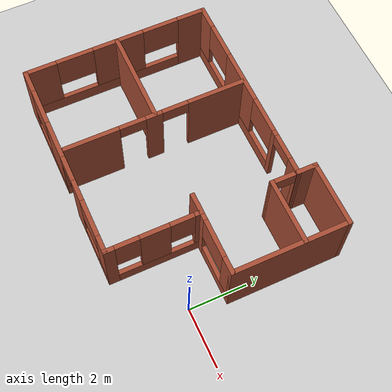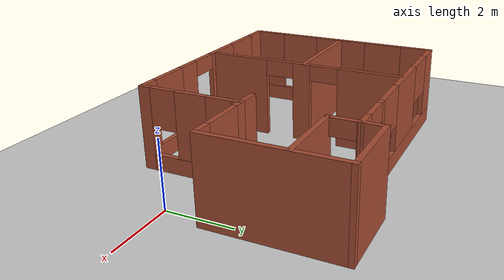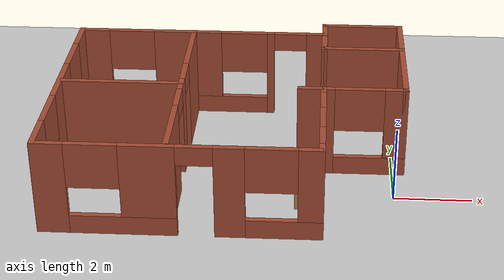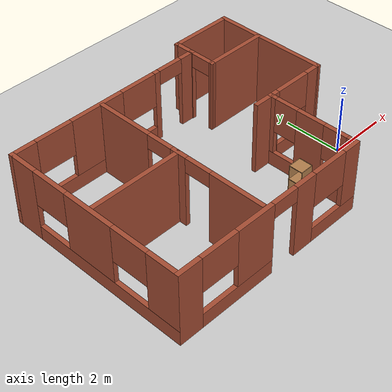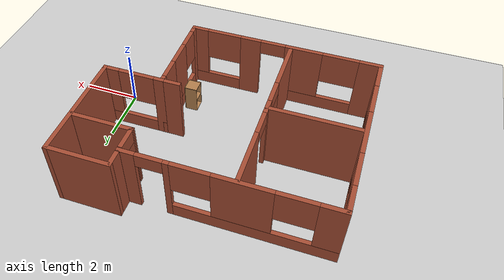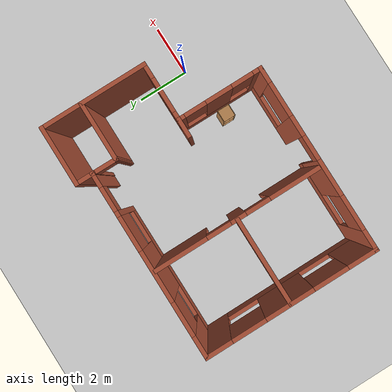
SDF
<sdf version="1.6">
 <world name="default">
  <light name="sun" type="directional">
   <pose>0 0 10 0 -0 0</pose>
   <diffuse>0.8 0.8 0.8 1</diffuse>
   <specular>0.1 0.1 0.1 1</specular>
   <attenuation>
    <range>1000</range>
    <constant>0.9</constant>
    <linear>0.01</linear>
    <quadratic>0.001</quadratic>
   </attenuation>
   <direction>-0.5 0.5 -1</direction>
  </light>
  <model name="ground_plane">
   <static>1</static>
   <link name="link">
    <collision name="collision">
     <geometry><plane><normal>0 0 1</normal><size>100 100</size></plane></geometry>
     <surface><friction><ode><mu>100</mu><mu2>50</mu2></ode></friction></surface>
    </collision>
    <visual name="visual">
     <cast_shadows>0</cast_shadows>
     <geometry><plane><normal>0 0 1</normal><size>100 100</size></plane></geometry>
     <material>
      <script><uri>file://media/materials/scripts/gazebo.material</uri><name>Gazebo/Grey</name></script>
     </material>
    </visual>
   </link>
  </model>
  <gravity>0 0 -9.8</gravity>
  <magnetic_field>6e-06 2.3e-05 -4.2e-05</magnetic_field>
  <atmosphere type="adiabatic"/>
  <physics name="default_physics" default="0" type="ode">
   <max_step_size>0.001</max_step_size>
   <real_time_factor>1</real_time_factor>
   <real_time_update_rate>1000</real_time_update_rate>
  </physics>
  <scene><ambient>0.4 0.4 0.4 1</ambient><background>0.7 0.7 0.7 1</background><shadows>1</shadows></scene>
  <spherical_coordinates>
   <surface_model>EARTH_WGS84</surface_model>
   <latitude_deg>0</latitude_deg>
   <longitude_deg>0</longitude_deg>
   <elevation>0</elevation>
   <heading_deg>0</heading_deg>
  </spherical_coordinates>
  <model name="smallHouse2">
   <pose>-4.22496 1.6018 0 0 -0 0</pose>
   <link name="Wall_0">
    <pose>-4.475 -0.3 0 0 0 -1.5708</pose>
    <visual name="Wall_0_Visual_0">
     <pose>-2.73536 0 1.25 0 -0 0</pose>
     <geometry><box><size>1.02928 0.15 2.5</size></box></geometry>
     <material>
      <script><uri>file://media/materials/scripts/gazebo.material</uri><name>Gazebo/Bricks</name></script>
      <ambient>1 1 1 1</ambient>
     </material>
    </visual>
    <collision name="Wall_0_Collision_0">
     <geometry><box><size>1.02928 0.15 2.5</size></box></geometry>
     <pose>-2.73536 0 1.25 0 -0 0</pose>
    </collision>
    <visual name="Wall_0_Visual_1">
     <pose>0.514638 0 0.25 0 -0 0</pose>
     <geometry><box><size>5.47072 0.15 0.5</size></box></geometry>
     <material>
      <script><uri>file://media/materials/scripts/gazebo.material</uri><name>Gazebo/Bricks</name></script>
      <ambient>1 1 1 1</ambient>
     </material>
    </visual>
    <collision name="Wall_0_Collision_1">
     <geometry><box><size>5.47072 0.15 0.5</size></box></geometry>
     <pose>0.514638 0 0.25 0 -0 0</pose>
    </collision>
    <visual name="Wall_0_Visual_2">
     <pose>-0.060785 0 1.5 0 -0 0</pose>
     <geometry><box><size>1.79465 0.15 2</size></box></geometry>
     <material>
      <script><uri>file://media/materials/scripts/gazebo.material</uri><name>Gazebo/Bricks</name></script>
      <ambient>1 1 1 1</ambient>
     </material>
    </visual>
    <collision name="Wall_0_Collision_2">
     <geometry><box><size>1.79465 0.15 2</size></box></geometry>
     <pose>-0.060785 0 1.5 0 -0 0</pose>
    </collision>
    <visual name="Wall_0_Visual_3">
     <pose>2.68463 0 1.5 0 -0 0</pose>
     <geometry><box><size>1.13073 0.15 2</size></box></geometry>
     <material>
      <script><uri>file://media/materials/scripts/gazebo.material</uri><name>Gazebo/Bricks</name></script>
      <ambient>1 1 1 1</ambient>
     </material>
    </visual>
    <collision name="Wall_0_Collision_3">
     <geometry><box><size>1.13073 0.15 2</size></box></geometry>
     <pose>2.68463 0 1.5 0 -0 0</pose>
    </collision>
    <visual name="Wall_0_Visual_4">
     <pose>-1.58942 0 1.9 0 -0 0</pose>
     <geometry><box><size>1.26261 0.15 1.2</size></box></geometry>
     <material>
      <script><uri>file://media/materials/scripts/gazebo.material</uri><name>Gazebo/Bricks</name></script>
      <ambient>1 1 1 1</ambient>
     </material>
    </visual>
    <collision name="Wall_0_Collision_4">
     <geometry><box><size>1.26261 0.15 1.2</size></box></geometry>
     <pose>-1.58942 0 1.9 0 -0 0</pose>
    </collision>
    <visual name="Wall_0_Visual_5">
     <pose>1.4779 0 1.9 0 -0 0</pose>
     <geometry><box><size>1.28273 0.15 1.2</size></box></geometry>
     <material>
      <script><uri>file://media/materials/scripts/gazebo.material</uri><name>Gazebo/Bricks</name></script>
      <ambient>1 1 1 1</ambient>
     </material>
    </visual>
    <collision name="Wall_0_Collision_5">
     <geometry><box><size>1.28273 0.15 1.2</size></box></geometry>
     <pose>1.4779 0 1.9 0 -0 0</pose>
    </collision>
   </link>
   <link name="Wall_1">
    <pose>-1.05 -3.475 0 0 -0 0</pose>
    <visual name="Wall_1_Visual_0">
     <pose>-3.09136 0 1.25 0 -0 0</pose>
     <geometry><box><size>0.817273 0.15 2.5</size></box></geometry>
     <material>
      <script><uri>file://media/materials/scripts/gazebo.material</uri><name>Gazebo/Bricks</name></script>
      <ambient>1 1 1 1</ambient>
     </material>
    </visual>
    <collision name="Wall_1_Collision_0">
     <geometry><box><size>0.817273 0.15 2.5</size></box></geometry>
     <pose>-3.09136 0 1.25 0 -0 0</pose>
    </collision>
    <visual name="Wall_1_Visual_1">
     <pose>1.23426 0 1.25 0 -0 0</pose>
     <geometry><box><size>0.750089 0.15 2.5</size></box></geometry>
     <material>
      <script><uri>file://media/materials/scripts/gazebo.material</uri><name>Gazebo/Bricks</name></script>
      <ambient>1 1 1 1</ambient>
     </material>
    </visual>
    <collision name="Wall_1_Collision_1">
     <geometry><box><size>0.750089 0.15 2.5</size></box></geometry>
     <pose>1.23426 0 1.25 0 -0 0</pose>
    </collision>
    <visual name="Wall_1_Visual_2">
     <pose>-1.36176 0 0.25 0 -0 0</pose>
     <geometry><box><size>2.64194 0.15 0.5</size></box></geometry>
     <material>
      <script><uri>file://media/materials/scripts/gazebo.material</uri><name>Gazebo/Bricks</name></script>
      <ambient>1 1 1 1</ambient>
     </material>
    </visual>
    <collision name="Wall_1_Collision_2">
     <geometry><box><size>2.64194 0.15 0.5</size></box></geometry>
     <pose>-1.36176 0 0.25 0 -0 0</pose>
    </collision>
    <visual name="Wall_1_Visual_3">
     <pose>2.55465 0 0.25 0 -0 0</pose>
     <geometry><box><size>1.8907 0.15 0.5</size></box></geometry>
     <material>
      <script><uri>file://media/materials/scripts/gazebo.material</uri><name>Gazebo/Bricks</name></script>
      <ambient>1 1 1 1</ambient>
     </material>
    </visual>
    <collision name="Wall_1_Collision_3">
     <geometry><box><size>1.8907 0.15 0.5</size></box></geometry>
     <pose>2.55465 0 0.25 0 -0 0</pose>
    </collision>
    <visual name="Wall_1_Visual_4">
     <pose>-0.717035 0 1.5 0 -0 0</pose>
     <geometry><box><size>1.3525 0.15 2</size></box></geometry>
     <material>
      <script><uri>file://media/materials/scripts/gazebo.material</uri><name>Gazebo/Bricks</name></script>
      <ambient>1 1 1 1</ambient>
     </material>
    </visual>
    <collision name="Wall_1_Collision_4">
     <geometry><box><size>1.3525 0.15 2</size></box></geometry>
     <pose>-0.717035 0 1.5 0 -0 0</pose>
    </collision>
    <visual name="Wall_1_Visual_5">
     <pose>-0.717035 0 1.5 0 -0 0</pose>
     <geometry><box><size>1.3525 0.15 2</size></box></geometry>
     <material>
      <script><uri>file://media/materials/scripts/gazebo.material</uri><name>Gazebo/Bricks</name></script>
      <ambient>1 1 1 1</ambient>
     </material>
    </visual>
    <collision name="Wall_1_Collision_5">
     <geometry><box><size>1.3525 0.15 2</size></box></geometry>
     <pose>-0.717035 0 1.5 0 -0 0</pose>
    </collision>
    <visual name="Wall_1_Visual_6">
     <pose>3.18596 0 1.5 0 -0 0</pose>
     <geometry><box><size>0.628086 0.15 2</size></box></geometry>
     <material>
      <script><uri>file://media/materials/scripts/gazebo.material</uri><name>Gazebo/Bricks</name></script>
      <ambient>1 1 1 1</ambient>
     </material>
    </visual>
    <collision name="Wall_1_Collision_6">
     <geometry><box><size>0.628086 0.15 2</size></box></geometry>
     <pose>3.18596 0 1.5 0 -0 0</pose>
    </collision>
    <visual name="Wall_1_Visual_7">
     <pose>-2.03801 0 1.9 0 -0 0</pose>
     <geometry><box><size>1.28944 0.15 1.2</size></box></geometry>
     <material>
      <script><uri>file://media/materials/scripts/gazebo.material</uri><name>Gazebo/Bricks</name></script>
      <ambient>1 1 1 1</ambient>
     </material>
    </visual>
    <collision name="Wall_1_Collision_7">
     <geometry><box><size>1.28944 0.15 1.2</size></box></geometry>
     <pose>-2.03801 0 1.9 0 -0 0</pose>
    </collision>
    <visual name="Wall_1_Visual_8">
     <pose>2.24061 0 1.9 0 -0 0</pose>
     <geometry><box><size>1.26261 0.15 1.2</size></box></geometry>
     <material>
      <script><uri>file://media/materials/scripts/gazebo.material</uri><name>Gazebo/Bricks</name></script>
      <ambient>1 1 1 1</ambient>
     </material>
    </visual>
    <collision name="Wall_1_Collision_8">
     <geometry><box><size>1.26261 0.15 1.2</size></box></geometry>
     <pose>2.24061 0 1.9 0 -0 0</pose>
    </collision>
    <visual name="Wall_1_Visual_9">
     <pose>0.409213 0 2.25 0 -0 0</pose>
     <geometry><box><size>0.9 0.15 0.5</size></box></geometry>
     <material>
      <script><uri>file://media/materials/scripts/gazebo.material</uri><name>Gazebo/Bricks</name></script>
      <ambient>1 1 1 1</ambient>
     </material>
    </visual>
    <collision name="Wall_1_Collision_9">
     <geometry><box><size>0.9 0.15 0.5</size></box></geometry>
     <pose>0.409213 0 2.25 0 -0 0</pose>
    </collision>
    <visual name="Wall_1_Visual_10">
     <pose>0.409213 0 2.25 0 -0 0</pose>
     <geometry><box><size>0.9 0.15 0.5</size></box></geometry>
     <material>
      <script><uri>file://media/materials/scripts/gazebo.material</uri><name>Gazebo/Bricks</name></script>
      <ambient>1 1 1 1</ambient>
     </material>
    </visual>
    <collision name="Wall_1_Collision_10">
     <geometry><box><size>0.9 0.15 0.5</size></box></geometry>
     <pose>0.409213 0 2.25 0 -0 0</pose>
    </collision>
   </link>
   <link name="Wall_12">
    <collision name="Wall_12_Collision">
     <geometry><box><size>3.25 0.15 2.5</size></box></geometry>
     <pose>0 0 1.25 0 -0 0</pose>
    </collision>
    <visual name="Wall_12_Visual">
     <pose>0 0 1.25 0 -0 0</pose>
     <geometry><box><size>3.25 0.15 2.5</size></box></geometry>
     <material>
      <script><uri>file://media/materials/scripts/gazebo.material</uri><name>Gazebo/Bricks</name></script>
      <ambient>1 1 1 1</ambient>
     </material>
    </visual>
    <pose>-2.88618 -0.263823 0 0 -0 3.14159</pose>
   </link>
   <link name="Wall_14">
    <collision name="Wall_14_Collision">
     <geometry><box><size>0.75 0.15 2.5</size></box></geometry>
     <pose>0 0 1.25 0 -0 0</pose>
    </collision>
    <visual name="Wall_14_Visual">
     <pose>0 0 1.25 0 -0 0</pose>
     <geometry><box><size>0.75 0.15 2.5</size></box></geometry>
     <material>
      <script><uri>file://media/materials/scripts/gazebo.material</uri><name>Gazebo/Bricks</name></script>
      <ambient>1 1 1 1</ambient>
     </material>
    </visual>
    <pose>2.075 -0.375 0 0 -0 3.14159</pose>
   </link>
   <link name="Wall_19">
    <collision name="Wall_19_Collision">
     <geometry><box><size>2.25 0.15 2.5</size></box></geometry>
     <pose>0 0 1.25 0 -0 0</pose>
    </collision>
    <visual name="Wall_19_Visual">
     <pose>0 0 1.25 0 -0 0</pose>
     <geometry><box><size>2.25 0.15 2.5</size></box></geometry>
     <material>
      <script><uri>file://media/materials/scripts/gazebo.material</uri><name>Gazebo/Bricks</name></script>
      <ambient>1 1 1 1</ambient>
     </material>
    </visual>
    <pose>3.4185 1.99753 0 0 -0 3.14159</pose>
   </link>
   <link name="Wall_2">
    <pose>2.375 -1.925 0 0 -0 1.5708</pose>
    <visual name="Wall_2_Visual_0">
     <pose>-1.43953 0 1.25 0 -0 0</pose>
     <geometry><box><size>0.370931 0.15 2.5</size></box></geometry>
     <material>
      <script><uri>file://media/materials/scripts/gazebo.material</uri><name>Gazebo/Bricks</name></script>
      <ambient>1 1 1 1</ambient>
     </material>
    </visual>
    <collision name="Wall_2_Collision_0">
     <geometry><box><size>0.370931 0.15 2.5</size></box></geometry>
     <pose>-1.43953 0 1.25 0 -0 0</pose>
    </collision>
    <visual name="Wall_2_Visual_1">
     <pose>0.185466 0 0.25 0 -0 0</pose>
     <geometry><box><size>2.87907 0.15 0.5</size></box></geometry>
     <material>
      <script><uri>file://media/materials/scripts/gazebo.material</uri><name>Gazebo/Bricks</name></script>
      <ambient>1 1 1 1</ambient>
     </material>
    </visual>
    <collision name="Wall_2_Collision_1">
     <geometry><box><size>2.87907 0.15 0.5</size></box></geometry>
     <pose>0.185466 0 0.25 0 -0 0</pose>
    </collision>
    <visual name="Wall_2_Visual_2">
     <pose>0.036459 0 1.5 0 -0 0</pose>
     <geometry><box><size>0.981057 0.15 2</size></box></geometry>
     <material>
      <script><uri>file://media/materials/scripts/gazebo.material</uri><name>Gazebo/Bricks</name></script>
      <ambient>1 1 1 1</ambient>
     </material>
    </visual>
    <collision name="Wall_2_Collision_2">
     <geometry><box><size>0.981057 0.15 2</size></box></geometry>
     <pose>0.036459 0 1.5 0 -0 0</pose>
    </collision>
    <visual name="Wall_2_Visual_3">
     <pose>1.47599 0 1.5 0 -0 0</pose>
     <geometry><box><size>0.298012 0.15 2</size></box></geometry>
     <material>
      <script><uri>file://media/materials/scripts/gazebo.material</uri><name>Gazebo/Bricks</name></script>
      <ambient>1 1 1 1</ambient>
     </material>
    </visual>
    <collision name="Wall_2_Collision_3">
     <geometry><box><size>0.298012 0.15 2</size></box></geometry>
     <pose>1.47599 0 1.5 0 -0 0</pose>
    </collision>
    <visual name="Wall_2_Visual_4">
     <pose>-0.854069 0 1.9 0 -0 0</pose>
     <geometry><box><size>0.8 0.15 1.2</size></box></geometry>
     <material>
      <script><uri>file://media/materials/scripts/gazebo.material</uri><name>Gazebo/Bricks</name></script>
      <ambient>1 1 1 1</ambient>
     </material>
    </visual>
    <collision name="Wall_2_Collision_4">
     <geometry><box><size>0.8 0.15 1.2</size></box></geometry>
     <pose>-0.854069 0 1.9 0 -0 0</pose>
    </collision>
    <visual name="Wall_2_Visual_5">
     <pose>0.926988 0 1.9 0 -0 0</pose>
     <geometry><box><size>0.8 0.15 1.2</size></box></geometry>
     <material>
      <script><uri>file://media/materials/scripts/gazebo.material</uri><name>Gazebo/Bricks</name></script>
      <ambient>1 1 1 1</ambient>
     </material>
    </visual>
    <collision name="Wall_2_Collision_5">
     <geometry><box><size>0.8 0.15 1.2</size></box></geometry>
     <pose>0.926988 0 1.9 0 -0 0</pose>
    </collision>
   </link>
   <link name="Wall_21">
    <pose>2.37175 2.43626 0 0 0 -1.5782</pose>
    <visual name="Wall_21_Visual_0">
     <pose>-0.427027 0 1.25 0 -0 0</pose>
     <geometry><box><size>0.173442 0.15 2.5</size></box></geometry>
     <material>
      <script><uri>file://media/materials/scripts/gazebo.material</uri><name>Gazebo/Bricks</name></script>
      <ambient>1 1 1 1</ambient>
     </material>
    </visual>
    <collision name="Wall_21_Collision_0">
     <geometry><box><size>0.173442 0.15 2.5</size></box></geometry>
     <pose>-0.427027 0 1.25 0 -0 0</pose>
    </collision>
    <visual name="Wall_21_Visual_1">
     <pose>0.460134 0 1.25 0 -0 0</pose>
     <geometry><box><size>0.107227 0.15 2.5</size></box></geometry>
     <material>
      <script><uri>file://media/materials/scripts/gazebo.material</uri><name>Gazebo/Bricks</name></script>
      <ambient>1 1 1 1</ambient>
     </material>
    </visual>
    <collision name="Wall_21_Collision_1">
     <geometry><box><size>0.107227 0.15 2.5</size></box></geometry>
     <pose>0.460134 0 1.25 0 -0 0</pose>
    </collision>
    <visual name="Wall_21_Visual_2">
     <pose>0.033107 0 2.25 0 -0 0</pose>
     <geometry><box><size>0.746827 0.15 0.5</size></box></geometry>
     <material>
      <script><uri>file://media/materials/scripts/gazebo.material</uri><name>Gazebo/Bricks</name></script>
      <ambient>1 1 1 1</ambient>
     </material>
    </visual>
    <collision name="Wall_21_Collision_2">
     <geometry><box><size>0.746827 0.15 0.5</size></box></geometry>
     <pose>0.033107 0 2.25 0 -0 0</pose>
    </collision>
   </link>
   <link name="Wall_3">
    <pose>3.425 -0.375 0 0 -0 0</pose>
    <visual name="Wall_3_Visual_0">
     <pose>-0.942907 0 1.25 0 -0 0</pose>
     <geometry><box><size>0.364187 0.15 2.5</size></box></geometry>
     <material>
      <script><uri>file://media/materials/scripts/gazebo.material</uri><name>Gazebo/Bricks</name></script>
      <ambient>1 1 1 1</ambient>
     </material>
    </visual>
    <collision name="Wall_3_Collision_0">
     <geometry><box><size>0.364187 0.15 2.5</size></box></geometry>
     <pose>-0.942907 0 1.25 0 -0 0</pose>
    </collision>
    <visual name="Wall_3_Visual_1">
     <pose>0.182093 0 0.25 0 -0 0</pose>
     <geometry><box><size>1.88581 0.15 0.5</size></box></geometry>
     <material>
      <script><uri>file://media/materials/scripts/gazebo.material</uri><name>Gazebo/Bricks</name></script>
      <ambient>1 1 1 1</ambient>
     </material>
    </visual>
    <collision name="Wall_3_Collision_1">
     <geometry><box><size>1.88581 0.15 0.5</size></box></geometry>
     <pose>0.182093 0 0.25 0 -0 0</pose>
    </collision>
    <visual name="Wall_3_Visual_2">
     <pose>0.824965 0 1.5 0 -0 0</pose>
     <geometry><box><size>0.60007 0.15 2</size></box></geometry>
     <material>
      <script><uri>file://media/materials/scripts/gazebo.material</uri><name>Gazebo/Bricks</name></script>
      <ambient>1 1 1 1</ambient>
     </material>
    </visual>
    <collision name="Wall_3_Collision_2">
     <geometry><box><size>0.60007 0.15 2</size></box></geometry>
     <pose>0.824965 0 1.5 0 -0 0</pose>
    </collision>
    <visual name="Wall_3_Visual_3">
     <pose>-0.117942 0 1.9 0 -0 0</pose>
     <geometry><box><size>1.28574 0.15 1.2</size></box></geometry>
     <material>
      <script><uri>file://media/materials/scripts/gazebo.material</uri><name>Gazebo/Bricks</name></script>
      <ambient>1 1 1 1</ambient>
     </material>
    </visual>
    <collision name="Wall_3_Collision_3">
     <geometry><box><size>1.28574 0.15 1.2</size></box></geometry>
     <pose>-0.117942 0 1.9 0 -0 0</pose>
    </collision>
   </link>
   <link name="Wall_4">
    <collision name="Wall_4_Collision">
     <geometry><box><size>4 0.15 2.5</size></box></geometry>
     <pose>0 0 1.25 0 -0 0</pose>
    </collision>
    <visual name="Wall_4_Visual">
     <pose>0 0 1.25 0 -0 0</pose>
     <geometry><box><size>4 0.15 2.5</size></box></geometry>
     <material>
      <script><uri>file://media/materials/scripts/gazebo.material</uri><name>Gazebo/Bricks</name></script>
      <ambient>1 1 1 1</ambient>
     </material>
    </visual>
    <pose>4.475 1.55 0 0 -0 1.5708</pose>
   </link>
   <link name="Wall_5">
    <collision name="Wall_5_Collision">
     <geometry><box><size>2.25 0.15 2.5</size></box></geometry>
     <pose>0 0 1.25 0 -0 0</pose>
    </collision>
    <visual name="Wall_5_Visual">
     <pose>0 0 1.25 0 -0 0</pose>
     <geometry><box><size>2.25 0.15 2.5</size></box></geometry>
     <material>
      <script><uri>file://media/materials/scripts/gazebo.material</uri><name>Gazebo/Bricks</name></script>
      <ambient>1 1 1 1</ambient>
     </material>
    </visual>
    <pose>3.425 3.475 0 0 -0 3.14159</pose>
   </link>
   <link name="Wall_6">
    <collision name="Wall_6_Collision">
     <geometry><box><size>0.75 0.15 2.5</size></box></geometry>
     <pose>0 0 1.25 0 -0 0</pose>
    </collision>
    <visual name="Wall_6_Visual">
     <pose>0 0 1.25 0 -0 0</pose>
     <geometry><box><size>0.75 0.15 2.5</size></box></geometry>
     <material>
      <script><uri>file://media/materials/scripts/gazebo.material</uri><name>Gazebo/Bricks</name></script>
      <ambient>1 1 1 1</ambient>
     </material>
    </visual>
    <pose>2.375 3.175 0 0 0 -1.5708</pose>
   </link>
   <link name="Wall_7">
    <pose>-1.05 2.875 0 0 -0 3.14159</pose>
    <visual name="Wall_7_Visual_0">
     <pose>-3.20438 0 1.25 0 -0 0</pose>
     <geometry><box><size>0.591242 0.15 2.5</size></box></geometry>
     <material>
      <script><uri>file://media/materials/scripts/gazebo.material</uri><name>Gazebo/Bricks</name></script>
      <ambient>1 1 1 1</ambient>
     </material>
    </visual>
    <collision name="Wall_7_Collision_0">
     <geometry><box><size>0.591242 0.15 2.5</size></box></geometry>
     <pose>-3.20438 0 1.25 0 -0 0</pose>
    </collision>
    <visual name="Wall_7_Visual_1">
     <pose>-1.90833 0 1.25 0 -0 0</pose>
     <geometry><box><size>0.200853 0.15 2.5</size></box></geometry>
     <material>
      <script><uri>file://media/materials/scripts/gazebo.material</uri><name>Gazebo/Bricks</name></script>
      <ambient>1 1 1 1</ambient>
     </material>
    </visual>
    <collision name="Wall_7_Collision_1">
     <geometry><box><size>0.200853 0.15 2.5</size></box></geometry>
     <pose>-1.90833 0 1.25 0 -0 0</pose>
    </collision>
    <visual name="Wall_7_Visual_2">
     <pose>0.846047 0 0.25 0 -0 0</pose>
     <geometry><box><size>5.30791 0.15 0.5</size></box></geometry>
     <material>
      <script><uri>file://media/materials/scripts/gazebo.material</uri><name>Gazebo/Bricks</name></script>
      <ambient>1 1 1 1</ambient>
     </material>
    </visual>
    <collision name="Wall_7_Collision_2">
     <geometry><box><size>5.30791 0.15 0.5</size></box></geometry>
     <pose>0.846047 0 0.25 0 -0 0</pose>
    </collision>
    <visual name="Wall_7_Visual_3">
     <pose>0.430978 0 1.5 0 -0 0</pose>
     <geometry><box><size>1.90628 0.15 2</size></box></geometry>
     <material>
      <script><uri>file://media/materials/scripts/gazebo.material</uri><name>Gazebo/Bricks</name></script>
      <ambient>1 1 1 1</ambient>
     </material>
    </visual>
    <collision name="Wall_7_Collision_3">
     <geometry><box><size>1.90628 0.15 2</size></box></geometry>
     <pose>0.430978 0 1.5 0 -0 0</pose>
    </collision>
    <visual name="Wall_7_Visual_4">
     <pose>3.07336 0 1.5 0 -0 0</pose>
     <geometry><box><size>0.85327 0.15 2</size></box></geometry>
     <material>
      <script><uri>file://media/materials/scripts/gazebo.material</uri><name>Gazebo/Bricks</name></script>
      <ambient>1 1 1 1</ambient>
     </material>
    </visual>
    <collision name="Wall_7_Collision_4">
     <geometry><box><size>0.85327 0.15 2</size></box></geometry>
     <pose>3.07336 0 1.5 0 -0 0</pose>
    </collision>
    <visual name="Wall_7_Visual_5">
     <pose>-1.16503 0 1.9 0 -0 0</pose>
     <geometry><box><size>1.28574 0.15 1.2</size></box></geometry>
     <material>
      <script><uri>file://media/materials/scripts/gazebo.material</uri><name>Gazebo/Bricks</name></script>
      <ambient>1 1 1 1</ambient>
     </material>
    </visual>
    <collision name="Wall_7_Collision_5">
     <geometry><box><size>1.28574 0.15 1.2</size></box></geometry>
     <pose>-1.16503 0 1.9 0 -0 0</pose>
    </collision>
    <visual name="Wall_7_Visual_6">
     <pose>2.01542 0 1.9 0 -0 0</pose>
     <geometry><box><size>1.26261 0.15 1.2</size></box></geometry>
     <material>
      <script><uri>file://media/materials/scripts/gazebo.material</uri><name>Gazebo/Bricks</name></script>
      <ambient>1 1 1 1</ambient>
     </material>
    </visual>
    <collision name="Wall_7_Collision_6">
     <geometry><box><size>1.26261 0.15 1.2</size></box></geometry>
     <pose>2.01542 0 1.9 0 -0 0</pose>
    </collision>
    <visual name="Wall_7_Visual_7">
     <pose>-2.45876 0 2.25 0 -0 0</pose>
     <geometry><box><size>0.9 0.15 0.5</size></box></geometry>
     <material>
      <script><uri>file://media/materials/scripts/gazebo.material</uri><name>Gazebo/Bricks</name></script>
      <ambient>1 1 1 1</ambient>
     </material>
    </visual>
    <collision name="Wall_7_Collision_7">
     <geometry><box><size>0.9 0.15 0.5</size></box></geometry>
     <pose>-2.45876 0 2.25 0 -0 0</pose>
    </collision>
   </link>
   <link name="Wall_9">
    <pose>-1.30958 -0.264053 0 0 0 -1.5708</pose>
    <visual name="Wall_9_Visual_0">
     <pose>-2.13067 0 1.25 0 -0 0</pose>
     <geometry><box><size>1.98866 0.15 2.5</size></box></geometry>
     <material>
      <script><uri>file://media/materials/scripts/gazebo.material</uri><name>Gazebo/Bricks</name></script>
      <ambient>1 1 1 1</ambient>
     </material>
    </visual>
    <collision name="Wall_9_Collision_0">
     <geometry><box><size>1.98866 0.15 2.5</size></box></geometry>
     <pose>-2.13067 0 1.25 0 -0 0</pose>
    </collision>
    <visual name="Wall_9_Visual_1">
     <pose>0.047826 0 1.25 0 -0 0</pose>
     <geometry><box><size>0.568331 0.15 2.5</size></box></geometry>
     <material>
      <script><uri>file://media/materials/scripts/gazebo.material</uri><name>Gazebo/Bricks</name></script>
      <ambient>1 1 1 1</ambient>
     </material>
    </visual>
    <collision name="Wall_9_Collision_1">
     <geometry><box><size>0.568331 0.15 2.5</size></box></geometry>
     <pose>0.047826 0 1.25 0 -0 0</pose>
    </collision>
    <visual name="Wall_9_Visual_2">
     <pose>2.1785 0 1.25 0 -0 0</pose>
     <geometry><box><size>1.89301 0.15 2.5</size></box></geometry>
     <material>
      <script><uri>file://media/materials/scripts/gazebo.material</uri><name>Gazebo/Bricks</name></script>
      <ambient>1 1 1 1</ambient>
     </material>
    </visual>
    <collision name="Wall_9_Collision_2">
     <geometry><box><size>1.89301 0.15 2.5</size></box></geometry>
     <pose>2.1785 0 1.25 0 -0 0</pose>
    </collision>
    <visual name="Wall_9_Visual_3">
     <pose>-0.68634 0 2.25 0 -0 0</pose>
     <geometry><box><size>0.9 0.15 0.5</size></box></geometry>
     <material>
      <script><uri>file://media/materials/scripts/gazebo.material</uri><name>Gazebo/Bricks</name></script>
      <ambient>1 1 1 1</ambient>
     </material>
    </visual>
    <collision name="Wall_9_Collision_3">
     <geometry><box><size>0.9 0.15 0.5</size></box></geometry>
     <pose>-0.68634 0 2.25 0 -0 0</pose>
    </collision>
    <visual name="Wall_9_Visual_4">
     <pose>0.781991 0 2.25 0 -0 0</pose>
     <geometry><box><size>0.9 0.15 0.5</size></box></geometry>
     <material>
      <script><uri>file://media/materials/scripts/gazebo.material</uri><name>Gazebo/Bricks</name></script>
      <ambient>1 1 1 1</ambient>
     </material>
    </visual>
    <collision name="Wall_9_Collision_4">
     <geometry><box><size>0.9 0.15 0.5</size></box></geometry>
     <pose>0.781991 0 2.25 0 -0 0</pose>
    </collision>
   </link>
   <static>1</static>
  </model>
  <model name="cabinet">
   <static>1</static>
   <link name="cabinet_bottom_plate">
    <inertial>
     <pose>0 0 -1 0 -0 0</pose>
     <inertia><ixx>2.05</ixx><ixy>0</ixy><ixz>0</ixz><iyy>2.05</iyy><iyz>0</iyz><izz>2.05</izz></inertia>
     <mass>25</mass>
    </inertial>
    <collision name="cabinet_bottom_plate_geom">
     <pose>0 0 0.01 0 -0 0</pose>
     <geometry><box><size>0.45 0.45 0.02</size></box></geometry>
    </collision>
    <visual name="cabinet_bottom_plate_geom_visual">
     <pose>0 0 0.01 0 -0 0</pose>
     <geometry><box><size>0.45 0.45 0.02</size></box></geometry>
     <material>
      <script><uri>file://media/materials/scripts/gazebo.material</uri><name>Gazebo/Wood</name></script>
     </material>
    </visual>
    <collision name="cabinet_bottom_plate_geom_cabinet_back_plate">
     <pose>0.235 0 0.51 0 -0 0</pose>
     <geometry><box><size>0.02 0.45 1.02</size></box></geometry>
    </collision>
    <visual name="cabinet_bottom_plate_geom_cabinet_back_plate_visual">
     <pose>0.235 0 0.51 0 -0 0</pose>
     <geometry><box><size>0.02 0.45 1.02</size></box></geometry>
     <material>
      <script><uri>file://media/materials/scripts/gazebo.material</uri><name>Gazebo/Wood</name></script>
     </material>
    </visual>
    <collision name="cabinet_bottom_plate_geom_cabinet_left_plate">
     <pose>0 0.235 0.51 0 -0 0</pose>
     <geometry><box><size>0.45 0.02 1.02</size></box></geometry>
    </collision>
    <visual name="cabinet_bottom_plate_geom_cabinet_left_plate_visual">
     <pose>0 0.235 0.51 0 -0 0</pose>
     <geometry><box><size>0.45 0.02 1.02</size></box></geometry>
     <material>
      <script><uri>file://media/materials/scripts/gazebo.material</uri><name>Gazebo/Wood</name></script>
     </material>
    </visual>
    <collision name="cabinet_bottom_plate_geom_cabinet_middle_plate">
     <pose>0 0 0.51 0 -0 0</pose>
     <geometry><box><size>0.45 0.45 0.02</size></box></geometry>
    </collision>
    <visual name="cabinet_bottom_plate_geom_cabinet_middle_plate_visual">
     <pose>0 0 0.51 0 -0 0</pose>
     <geometry><box><size>0.45 0.45 0.02</size></box></geometry>
     <material>
      <script><uri>file://media/materials/scripts/gazebo.material</uri><name>Gazebo/Wood</name></script>
     </material>
    </visual>
    <collision name="cabinet_bottom_plate_geom_cabinet_right_plate">
     <pose>0 -0.235 0.51 0 -0 0</pose>
     <geometry><box><size>0.45 0.02 1.02</size></box></geometry>
    </collision>
    <visual name="cabinet_bottom_plate_geom_cabinet_right_plate_visual">
     <pose>0 -0.235 0.51 0 -0 0</pose>
     <geometry><box><size>0.45 0.02 1.02</size></box></geometry>
     <material>
      <script><uri>file://media/materials/scripts/gazebo.material</uri><name>Gazebo/Wood</name></script>
     </material>
    </visual>
    <collision name="cabinet_bottom_plate_geom_cabinet_top_plate">
     <pose>0 0 1.01 0 -0 0</pose>
     <geometry><box><size>0.45 0.45 0.02</size></box></geometry>
    </collision>
    <visual name="cabinet_bottom_plate_geom_cabinet_top_plate_visual">
     <pose>0 0 1.01 0 -0 0</pose>
     <geometry><box><size>0.45 0.45 0.02</size></box></geometry>
     <material>
      <script><uri>file://media/materials/scripts/gazebo.material</uri><name>Gazebo/Wood</name></script>
     </material>
    </visual>
   </link>
   <pose>-2.29638 -0.371877 0 0 -0 0</pose>
  </model>
 </world>
</sdf>
